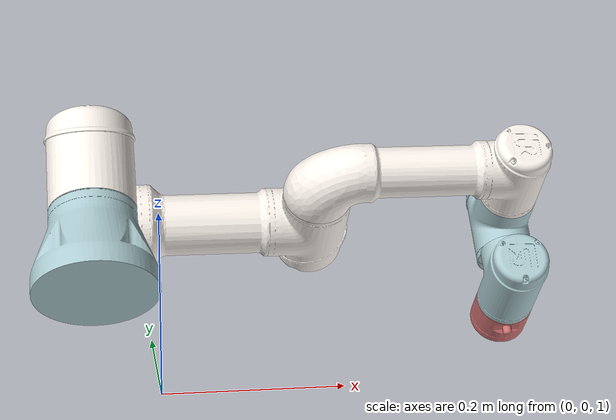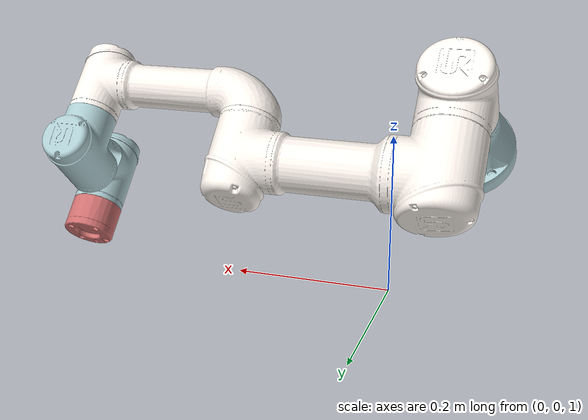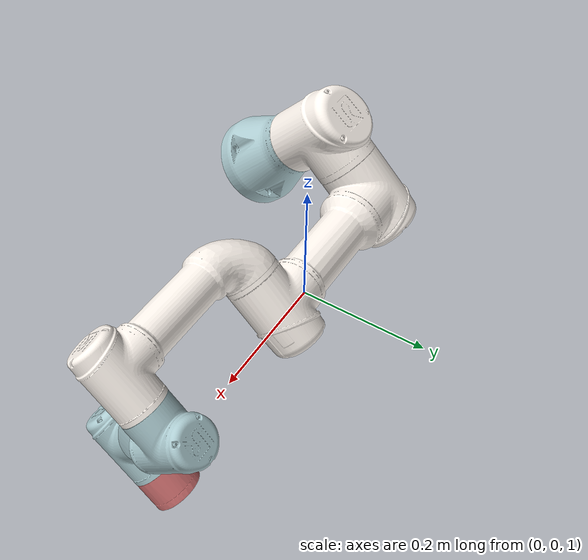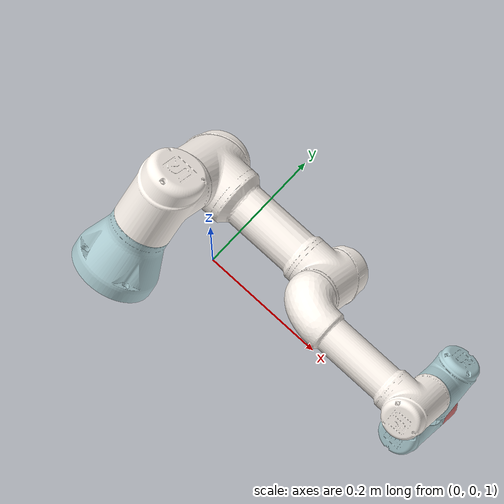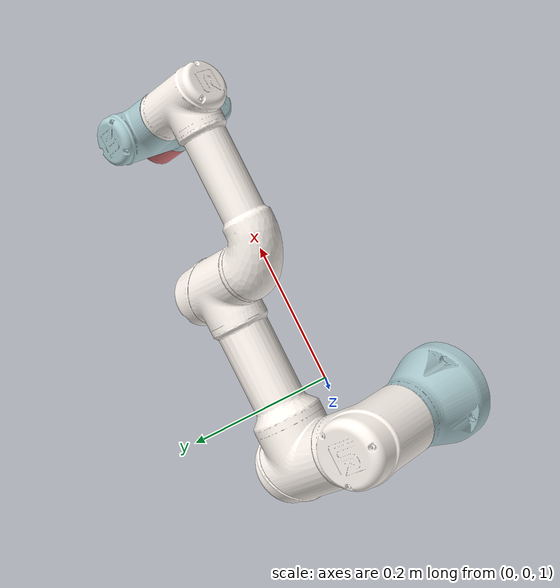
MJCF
<mujoco model="ur3">

    <option>
        <flag gravity="disable"/>
    </option>

    <compiler angle="radian" />
    <size njmax="500" nconmax="100" />
    <asset>
        <mesh name="base" file="meshes/base.stl" />
        <mesh name="shoulder" file="meshes/shoulder.stl" />
        <mesh name="upperarm" file="meshes/upperarm.stl" />
        <mesh name="forearm" file="meshes/forearm.stl" />
        <mesh name="wrist1" file="meshes/wrist1.stl" />
        <mesh name="wrist2" file="meshes/wrist2.stl" />
        <mesh name="wrist3" file="meshes/wrist3.stl" />
    </asset>
    <!-- blue: "0.68 0.80 0.82 1.0", white: "1.0 0.97 0.94 1.0", red: "0.81 0.44 0.44 1.0"-->
    <worldbody>

        <!-- BASE -->
        <body name="base_link" pos="-0.07 -0.13 1.15" quat="0.9238777 -0.3826805 0.0 0.0">
            <inertial pos="0 0 0" quat="0.5 0.5 -0.5 0.5" mass="2" diaginertia="0.005625 0.00305317 0.00305317" />
            <geom type="mesh" rgba="0.68 0.80 0.82 1.0" mesh="base" />

            <!-- SHOULDER -->
            <body name="shoulder_link" pos="0 0 0.1519">
                <inertial pos="0 0 0" mass="2" diaginertia="0.00809316 0.00809316 0.005625" />
                <joint name="shoulder_pan_joint" pos="0 0 0" axis="0 0 1" limited="true" range="-6.28319 6.28319" />
                <geom type="mesh" rgba="1.0 0.97 0.94 1.0" mesh="shoulder" />

                <!-- UPPERARM -->
                <body name="upper_arm_link" pos="0 0.1198 0" quat="0.707107 0 0.707107 0">
                    <inertial pos="0 0 0.121825" mass="3.42" diaginertia="0.0217285 0.0217285 0.00961875" />
                    <joint name="shoulder_lift_joint" pos="0 0 0" axis="0 1 0" limited="true" range="-6.28319 6.28319" />
                    <geom type="mesh" rgba="1.0 0.97 0.94 1.0" mesh="upperarm" />

                    <!-- FOREARM -->
                    <body name="forearm_link" pos="0 -0.0925 0.24365">
                        <inertial pos="0 0 0.106625" mass="1.26" diaginertia="0.00654681 0.00654681 0.00354375" />
                        <joint name="elbow_joint" pos="0 0 0" axis="0 1 0" limited="true" range="-3.14159 3.14159" />
                        <geom type="mesh" rgba="1.0 0.97 0.94 1.0" mesh="forearm" />

                        <!-- WRIST 1 -->
                        <body name="wrist_1_link" pos="0 0 0.21325" quat="0.707107 0 0.707107 0">
                            <inertial pos="0 0 0" quat="0.5 0.5 -0.5 0.5" mass="0.8" diaginertia="0.00225 0.002085 0.002085" />
                            <joint name="wrist_1_joint" pos="0 0 0" axis="0 1 0" limited="true" range="-6.28319 6.28319" />
                            <geom type="mesh" rgba="0.68 0.80 0.82 1.0" mesh="wrist1" />

                            <!-- WRIST 2 -->
                            <body name="wrist_2_link" pos="0 0.08505 0">
                                <inertial pos="0 0 0" quat="0.5 0.5 -0.5 0.5" mass="0.8" diaginertia="0.00225 0.002085 0.002085" />
                                <joint name="wrist_2_joint" pos="0 0 0" axis="0 0 1" limited="true" range="-6.28319 6.28319" />
                                <geom type="mesh" rgba="0.68 0.80 0.82 1.0" mesh="wrist2" />

                                <!-- WRIST 3 -->
                                <body name="wrist_3_link" pos="0 0 0.08535">
                                    <inertial pos="0 0 0" quat="0.5 0.5 -0.5 0.5" mass="0.35" diaginertia="0.000984375 0.000912187 0.000912187" />
                                    <joint name="wrist_3_joint" pos="0 0 0" axis="0 1 0" limited="true" range="-6.28319 6.28319" />
                                    <geom type="mesh" rgba="0.81 0.44 0.44 1.0" mesh="wrist3" />

                                    <body name="ee_link" pos="0 0.0819 0" quat="0.707107 0 0 0.707107">
                                        <inertial pos="-0.01 0 0" mass="0.001" diaginertia="1.66667e-08 1.66667e-08 1.66667e-08" />
                                        <geom size="0.005 0.005 0.005" pos="-0.01 0 0" type="box" />
                                    </body>
                                    <body name="tool0" pos="0 0.0819 0" quat="0.707107 -0.707107 0 0">
                                        <inertial pos="0 0.0819 0" quat="0.707107 -0.707107 0 0" mass="0" diaginertia="0 0 0" />
                                    </body>
                                </body>
                            </body>
                        </body>
                    </body>
                </body>
            </body>
        </body>
    </worldbody>
</mujoco>
